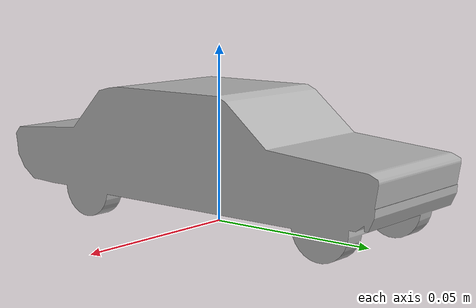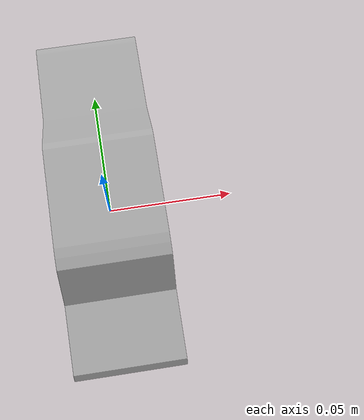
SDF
<?xml version="1.0" ?>
<sdf version='1.7'>
  <model name='car'>
    <link name='link'>
      <inertial>
        <pose>1.0161376409608881e-16 -0.00018301107250346684 0.019921769525778 0 -0 0</pose>
        <mass>0.1</mass>
        <inertia>
          <ixx>0.001045</ixx>
          <ixy>0</ixy>
          <ixz>0</ixz>
          <iyy>0.000193</iyy>
          <iyz>1.4e-05</iyz>
          <izz>0.001109</izz>
        </inertia>
      </inertial>
      <collision name='collision'>
        <pose>0 0 0 0 -0 0</pose>
        <geometry>
          <mesh>
            <scale>0.001 0.001 0.001</scale>
            <uri>model://car/meshes/base_link.stl</uri>
          </mesh>
        </geometry>
        <surface>
          <contact>
            <poissons_ratio>0.347</poissons_ratio>
            <elastic_modulus>8.8e+09</elastic_modulus>
            <ode>
              <kp>100000</kp>
              <kd>1</kd>
              <max_vel>1.0</max_vel>
              <min_depth>0.001</min_depth>
            </ode>
          </contact>
          <friction>
            <torsional>
              <coefficient>1.0</coefficient>
              <use_patch_radius>0</use_patch_radius>
              <surface_radius>0.05</surface_radius>
            </torsional>
          </friction>
        </surface>
      </collision>
      <visual name='visual'>
        <pose>0 0 0 0 -0 0</pose>
        <geometry>
          <mesh>
            <scale>0.001 0.001 0.001</scale>
            <uri>model://car/meshes/base_link.stl</uri>
          </mesh>
        </geometry>
      </visual>
    </link>
  </model>
</sdf>
